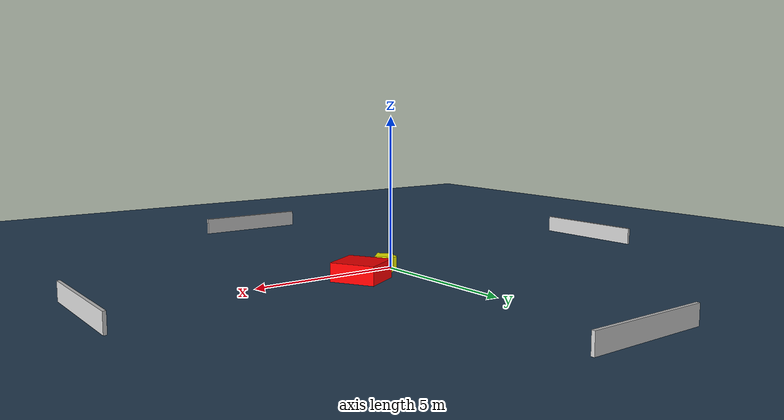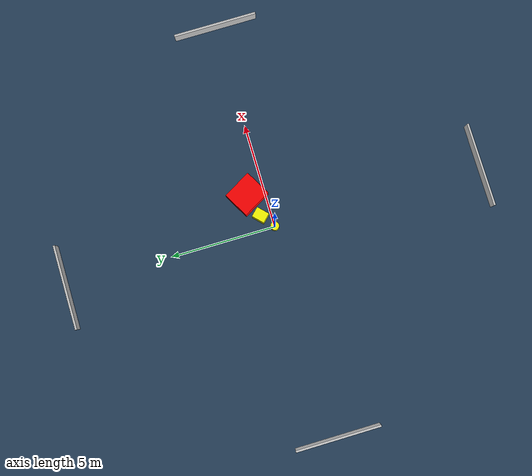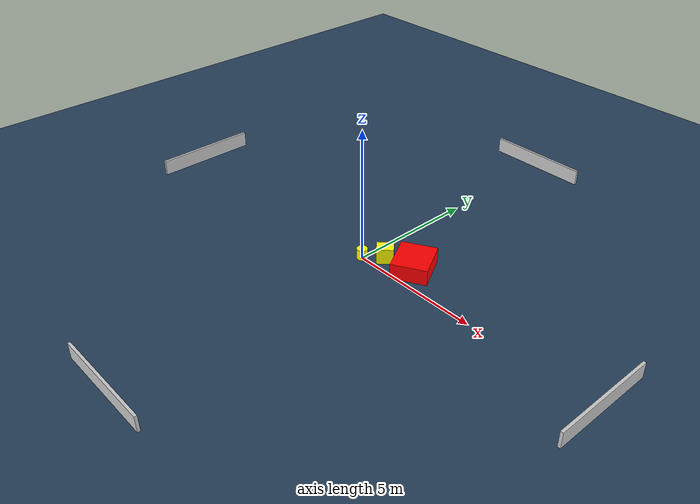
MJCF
<?xml version="1.0" ?>
<mujoco model="generated_environment">
  <option timestep="0.01" integrator="RK4" cone="elliptic"/>
  <default>
    <geom density="1"/>
  </default>
  <asset>
    <texture builtin="gradient" height="3072" name="skybox" rgb1="0.3 0.5 0.7" rgb2="0 0 0" type="skybox" width="512"/>
    <texture builtin="checker" height="300" name="groundplane" rgb1="0.2 0.3 0.4" rgb2="0.1 0.2 0.3" type="2d" width="300"/>
    <material name="groundplane" reflectance="0.2" texrepeat="5 5" texture="groundplane"/>
  </asset>
  <worldbody>
    <light dir="0 0 -1" directional="true" pos="0 0 1.5"/>
    <geom condim="3" friction="0.5 0.005 0.001" material="groundplane" name="floor" pos="0 0 0" size="0 0 0.05" type="plane"/>
    <body name="walls">
      <geom name="wall_1" condim="4" pos="-10.0 0.0 0.3" rgba="0.800000011920929 0.800000011920929 0.800000011920929 1.0" size="0.05 2.0 0.3" type="box"/>
      <geom name="wall_2" condim="4" pos="10.0 0.0 0.3" rgba="0.800000011920929 0.800000011920929 0.800000011920929 1.0" size="0.05 2.0 0.3" type="box"/>
      <geom name="wall_3" condim="4" pos="0.0 -10.0 0.3" rgba="0.800000011920929 0.800000011920929 0.800000011920929 1.0" size="2.0 0.05 0.3" type="box"/>
      <geom name="wall_4" condim="4" pos="0.0 10.0 0.3" rgba="0.800000011920929 0.800000011920929 0.800000011920929 1.0" size="2.0 0.05 0.3" type="box"/>
    </body>
    <body name="robot">
      <joint name="joint_x" type="slide" pos="0 0 0" axis="1 0 0"/>
      <joint name="joint_y" type="slide" pos="0 0 0" axis="0 1 0"/>
      <geom name="robot" type="cylinder" pos="0.0 0.0 0.2" size="0.2 0.2 0.0" mass="5.0" friction="1.0 0.005 0.0001" condim="4" rgba="1.0 1.0 0.0 1.0"/>
    </body>
    <body name="obstacle_1_movable">
      <geom name="obstacle_1_movable" condim="4" pos="0.6539234548873587 0.5000485418324018 0.3" euler="0 0 313.9206785617444" friction="0.0 0.005 0.001" rgba="1.0 1.0 0.0 1.0" size="0.2498853800811876 0.3089944323564025 0.3" type="box" mass="0.1"/>
      <joint type="free"/>
    </body>
    <body name="obstacle_2_static">
      <geom name="obstacle_2_static" condim="4" pos="1.7624845654765664 0.8255439392649062 0.3" euler="0 0 209.3678230920896" friction="0.0 0.005 0.001" rgba="1.0 0.0 0.0 1.0" size="0.6638969990444785 0.7350481571498511 0.3" type="box"/>
    </body>
  </worldbody>
  <actuator>
    <motor name="actuator_x" joint="joint_x" gear="1" ctrlrange="-1 1"/>
    <motor name="actuator_y" joint="joint_y" gear="1" ctrlrange="-1 1"/>
  </actuator>
</mujoco>
